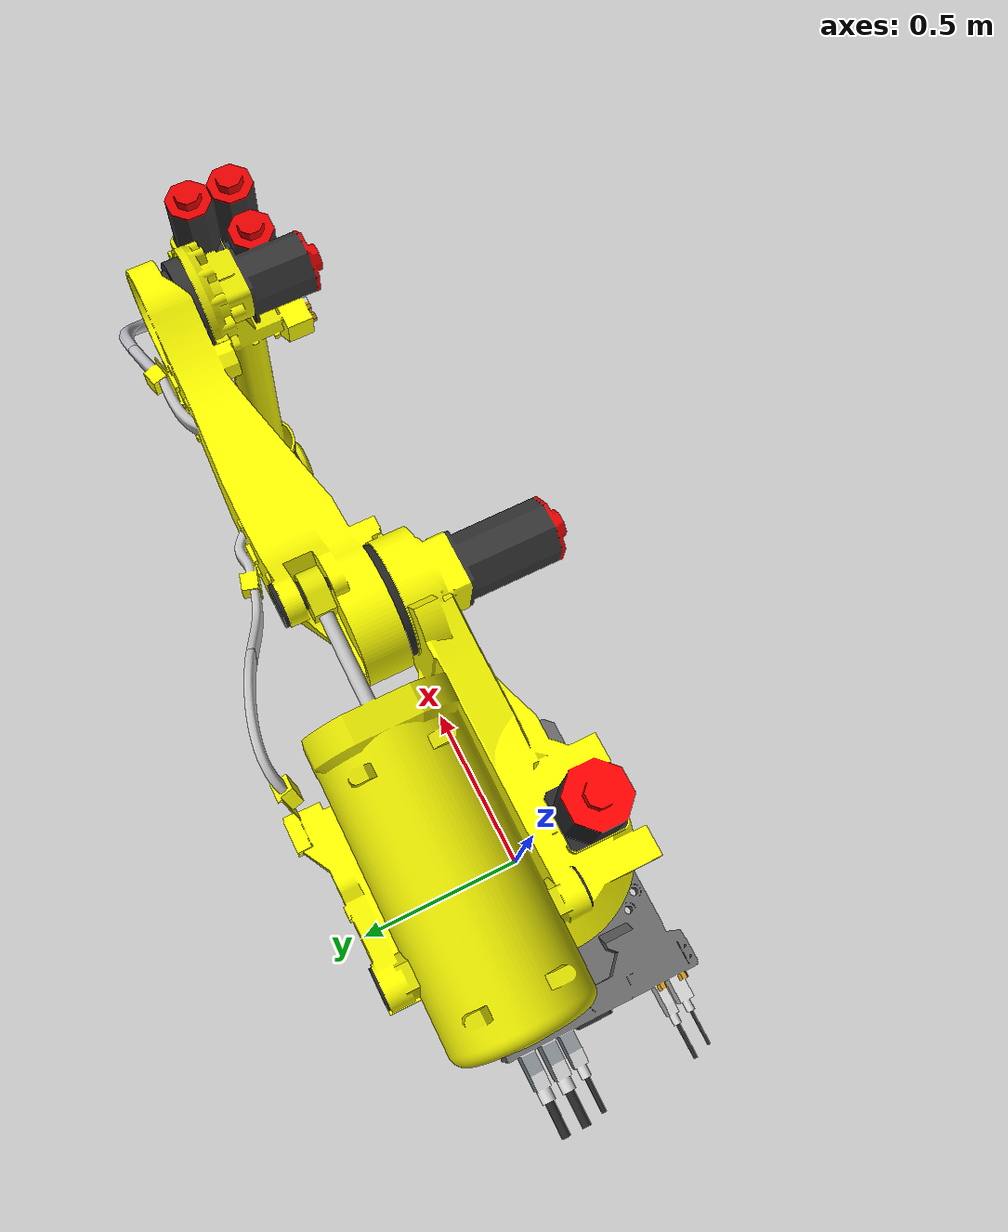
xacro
<?xml version="1.0" ?>
<robot name="r2000ic_100ph" xmlns:xacro="http://wiki.ros.org/xacro">
  <xacro:include
    filename="$(find fanuc_r2000_description)/urdf/r2000ic_100ph_urdf_macro.xacro"
  />

  <link name="world" />
  <link name="ee_link" />
  <xacro:r2000ic_100ph parent="world" child="ee_link">
    <origin xyz="0 0 0" rpy="0 0 0" />
  </xacro:r2000ic_100ph>
</robot>

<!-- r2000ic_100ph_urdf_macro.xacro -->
<!--
SPDX-FileCopyrightText: 2026, FANUC America Corporation
SPDX-FileCopyrightText: 2026, FANUC CORPORATION
SPDX-License-Identifier: Apache-2.0
-->
<!-- URDF for R-2000/100R-35C(R-2000iC/100PH) -->
<robot xmlns:xacro="http://wiki.ros.org/xacro">
  <xacro:macro
    name="r2000ic_100ph"
    params="prefix=''
            parent
            *origin
            child"
  >

    <xacro:property name="j1_lower_limit" value="${radians(-185)}" />
    <xacro:property name="j2_lower_limit" value="${radians(-120)}" />
    <xacro:property name="j3_lower_limit" value="${radians(-79)}" />
    <xacro:property name="j4_lower_limit" value="${radians(-360)}" />
    <xacro:property name="j5_lower_limit" value="${radians(-125)}" />
    <xacro:property name="j6_lower_limit" value="${radians(-360)}" />

    <xacro:property name="j1_upper_limit" value="${radians(185)}" />
    <xacro:property name="j2_upper_limit" value="${radians(80)}" />
    <xacro:property name="j3_upper_limit" value="${radians(180)}" />
    <xacro:property name="j4_upper_limit" value="${radians(360)}" />
    <xacro:property name="j5_upper_limit" value="${radians(125)}" />
    <xacro:property name="j6_upper_limit" value="${radians(360)}" />

    <xacro:property name="j1_effort_limit" value="20000" />
    <xacro:property name="j2_effort_limit" value="30000" />
    <xacro:property name="j3_effort_limit" value="20000" />
    <xacro:property name="j4_effort_limit" value="5000" />
    <xacro:property name="j5_effort_limit" value="5000" />
    <xacro:property name="j6_effort_limit" value="3000" />

    <xacro:property name="j1_velocity_limit" value="${radians(120)}" />
    <xacro:property name="j2_velocity_limit" value="${radians(100)}" />
    <xacro:property name="j3_velocity_limit" value="${radians(115)}" />
    <xacro:property name="j4_velocity_limit" value="${radians(140)}" />
    <xacro:property name="j5_velocity_limit" value="${radians(140)}" />
    <xacro:property name="j6_velocity_limit" value="${radians(210)}" />

    <!-- links -->
    <link name="${prefix}base_link">
      <visual>
        <origin xyz="0 0 0" rpy="0 0 0" />
        <geometry>
          <mesh
            filename="package://fanuc_r2000_description/meshes/r2000ic_100ph/visual/base.dae"
          />
        </geometry>
      </visual>
      <collision>
        <origin xyz="0 0 0" rpy="0 0 0" />
        <geometry>
          <mesh
            filename="package://fanuc_r2000_description/meshes/r2000ic_100ph/collision/base.stl"
          />
        </geometry>
      </collision>
      <inertial>
        <mass value=" 197" />
        <origin xyz="-.14 -.000499  .126" />
        <inertia
          ixx=" 6.57"
          ixy=" .154"
          ixz="-.115"
          iyy=" 14.4"
          iyz=" .0127"
          izz=" 18.7"
        />
      </inertial>
    </link>

    <link name="${prefix}J1_link">
      <visual>
        <origin xyz="0 0 0" rpy="0 0 0" />
        <geometry>
          <mesh
            filename="package://fanuc_r2000_description/meshes/r2000ic_100ph/visual/j1.dae"
          />
        </geometry>
      </visual>
      <collision>
        <origin xyz="0 0 0" rpy="0 0 0" />
        <geometry>
          <mesh
            filename="package://fanuc_r2000_description/meshes/r2000ic_100ph/collision/j1.stl"
          />
        </geometry>
      </collision>
      <inertial>
        <mass value=" 714" />
        <origin xyz=" .212  .115 -.00833" />
        <inertia
          ixx=" 56.6"
          ixy=" 10.7"
          ixz="-3.2"
          iyy=" 90.1"
          iyz="-4.44"
          izz=" 113"
        />
      </inertial>
    </link>

    <link name="${prefix}J2_link">
      <visual>
        <origin xyz="0 0 0" rpy="0 0 0" />
        <geometry>
          <mesh
            filename="package://fanuc_r2000_description/meshes/r2000ic_100ph/visual/j2.dae"
          />
        </geometry>
      </visual>
      <collision>
        <origin xyz="0 0 0" rpy="0 0 0" />
        <geometry>
          <mesh
            filename="package://fanuc_r2000_description/meshes/r2000ic_100ph/collision/j2.stl"
          />
        </geometry>
      </collision>
      <inertial>
        <mass value=" 216" />
        <origin xyz=" .434  .246  .00114" />
        <inertia
          ixx=" 4.49"
          ixy="-1.45"
          ixz=" .685"
          iyy=" 27.7"
          iyz="-.194"
          izz=" 27.4"
        />
      </inertial>
    </link>

    <link name="${prefix}J3_link">
      <visual>
        <origin xyz="0 0 0" rpy="0 0 0" />
        <geometry>
          <mesh
            filename="package://fanuc_r2000_description/meshes/r2000ic_100ph/visual/j3.dae"
          />
        </geometry>
      </visual>
      <collision>
        <origin xyz="0 0 0" rpy="0 0 0" />
        <geometry>
          <mesh
            filename="package://fanuc_r2000_description/meshes/r2000ic_100ph/collision/j3.stl"
          />
        </geometry>
      </collision>
      <inertial>
        <mass value=" 338" />
        <origin xyz=" .132  .0538 -.476" />
        <inertia
          ixx=" 61.4"
          ixy=" .558"
          ixz=" 5.27"
          iyy=" 60.7"
          iyz="-2.28"
          izz=" 10.4"
        />
      </inertial>
    </link>

    <link name="${prefix}J4_link">
      <visual>
        <origin xyz="0 0 0" rpy="0 0 0" />
        <geometry>
          <mesh
            filename="package://fanuc_r2000_description/meshes/r2000ic_100ph/visual/j4.dae"
          />
        </geometry>
      </visual>
      <collision>
        <origin xyz="0 0 0" rpy="0 0 0" />
        <geometry>
          <mesh
            filename="package://fanuc_r2000_description/meshes/r2000ic_100ph/collision/j4.stl"
          />
        </geometry>
      </collision>
      <inertial>
        <mass value=" 9.68" />
        <origin xyz="-.0000000108 -.00867 -1.63" />
        <inertia
          ixx=" .0849"
          ixy="-.000000000101"
          ixz=" .00000000747"
          iyy=" .087"
          iyz="-.00509"
          izz=" .0378"
        />
      </inertial>
    </link>

    <link name="${prefix}J5_link">
      <visual>
        <origin xyz="0 0 0" rpy="0 0 0" />
        <geometry>
          <mesh
            filename="package://fanuc_r2000_description/meshes/r2000ic_100ph/visual/j5.dae"
          />
        </geometry>
      </visual>
      <collision>
        <origin xyz="0 0 0" rpy="0 0 0" />
        <geometry>
          <mesh
            filename="package://fanuc_r2000_description/meshes/r2000ic_100ph/collision/j5.stl"
          />
        </geometry>
      </collision>
      <inertial>
        <mass value=" 19.5" />
        <origin xyz="-.0000000343 -.0201 -.0606" />
        <inertia
          ixx=" .231"
          ixy=" .0000000629"
          ixz="-.0000000501"
          iyy=" .195"
          iyz=" .0232"
          izz=" .149"
        />
      </inertial>
    </link>

    <link name="${prefix}J6_link">
      <visual>
        <origin xyz="0 0 0" rpy="0 0 0" />
        <geometry>
          <mesh
            filename="package://fanuc_r2000_description/meshes/r2000ic_100ph/visual/j6.dae"
          />
        </geometry>
      </visual>
      <collision>
        <origin xyz="0 0 0" rpy="0 0 0" />
        <geometry>
          <mesh
            filename="package://fanuc_r2000_description/meshes/r2000ic_100ph/collision/j6.stl"
          />
        </geometry>
      </collision>
      <inertial>
        <mass value=" 1.09" />
        <origin xyz=" .000102 -.0000000235 -.224" />
        <inertia
          ixx=" .00217"
          ixy="-.0000000239"
          ixz=" .000000151"
          iyy=" .00216"
          iyz=" .000000000263"
          izz=" .00416"
        />
      </inertial>
    </link>

    <!-- joints -->
    <joint name="${prefix}J1" type="revolute">
      <origin xyz=" 0  0  .6" rpy="0 0 0" />
      <parent link="${prefix}base_link" />
      <child link="${prefix}J1_link" />
      <axis xyz=" 0  0  1" />
      <limit
        lower="${j1_lower_limit}"
        upper="${j1_upper_limit}"
        effort="${j1_effort_limit}"
        velocity="${j1_velocity_limit}"
      />
    </joint>

    <joint name="${prefix}J2" type="revolute">
      <origin xyz=" .72  0  0" rpy="0 0 0" />
      <parent link="${prefix}J1_link" />
      <child link="${prefix}J2_link" />
      <axis xyz=" 0  1  0" />
      <limit
        lower="${j2_lower_limit}"
        upper="${j2_upper_limit}"
        effort="${j2_effort_limit}"
        velocity="${j2_velocity_limit}"
      />
    </joint>

    <joint name="${prefix}J3" type="revolute">
      <origin xyz=" 1.075  0  0" rpy="0 0 0" />
      <parent link="${prefix}J2_link" />
      <child link="${prefix}J3_link" />
      <axis xyz=" 0 -1  0" />
      <limit
        lower="${j3_lower_limit}"
        upper="${j3_upper_limit}"
        effort="${j3_effort_limit}"
        velocity="${j3_velocity_limit}"
      />
    </joint>

    <joint name="${prefix}J4" type="revolute">
      <origin xyz=" .225  0  0" rpy="0 0 0" />
      <parent link="${prefix}J3_link" />
      <child link="${prefix}J4_link" />
      <axis xyz=" 0  0  1" />
      <limit
        lower="${j4_lower_limit}"
        upper="${j4_upper_limit}"
        effort="${j4_effort_limit}"
        velocity="${j4_velocity_limit}"
      />
    </joint>

    <joint name="${prefix}J5" type="revolute">
      <origin xyz=" 0  0 -1.73" rpy="0 0 0" />
      <parent link="${prefix}J4_link" />
      <child link="${prefix}J5_link" />
      <axis xyz=" 0 -1  0" />
      <limit
        lower="${j5_lower_limit}"
        upper="${j5_upper_limit}"
        effort="${j5_effort_limit}"
        velocity="${j5_velocity_limit}"
      />
    </joint>

    <joint name="${prefix}J6" type="revolute">
      <origin xyz=" 0  0  0" rpy="0 0 0" />
      <parent link="${prefix}J5_link" />
      <child link="${prefix}J6_link" />
      <axis xyz=" 0  0  1" />
      <limit
        lower="${j6_lower_limit}"
        upper="${j6_upper_limit}"
        effort="${j6_effort_limit}"
        velocity="${j6_velocity_limit}"
      />
    </joint>

    <!-- world coords -->
    <link name="${prefix}wbase" />
    <joint name="${prefix}base_link-wbase" type="fixed">
      <origin xyz=" 0  0  .6" rpy="0 0 0" />
      <parent link="${prefix}base_link" />
      <child link="${prefix}wbase" />
    </joint>

    <!-- flange coords -->
    <link name="${prefix}flange" />
    <joint name="${prefix}J6-flange" type="fixed">
      <origin xyz=" 0  0 -.24" rpy="0 0 0" />
      <parent link="${prefix}J6_link" />
      <child link="${prefix}flange" />
    </joint>

    <!-- FANUC flange coords -->
    <link name="${prefix}fanuc_flange" />
    <joint name="${prefix}flange-fanuc_flange" type="fixed">
      <origin xyz="0 0 0" rpy="${radians( 180)} ${radians( 0)} ${radians( 0)}" />
      <parent link="${prefix}flange" />
      <child link="${prefix}fanuc_flange" />
    </joint>

    <!-- Attach to parent -->
    <joint name="${prefix}base_joint" type="fixed">
      <xacro:insert_block name="origin" />
      <parent link="${parent}" />
      <child link="${prefix}base_link" />
    </joint>

    <!-- Attach child -->
    <joint name="${prefix}child_joint" type="fixed">
      <origin xyz="0 0 0" rpy="0 0 0" />
      <parent link="${prefix}flange" />
      <child link="${child}" />
    </joint>
  </xacro:macro>
</robot>
